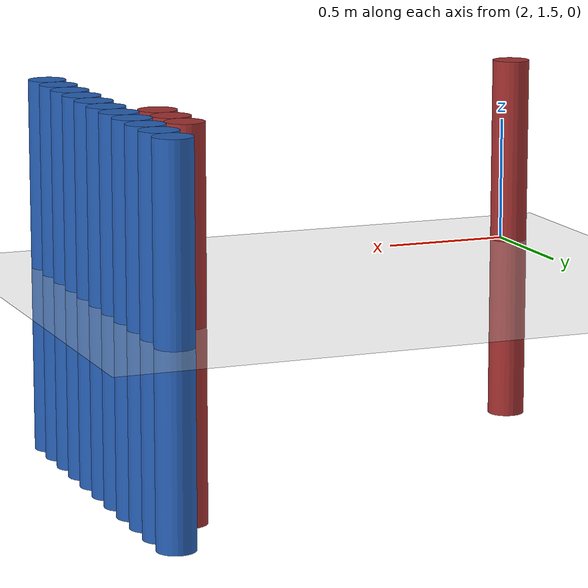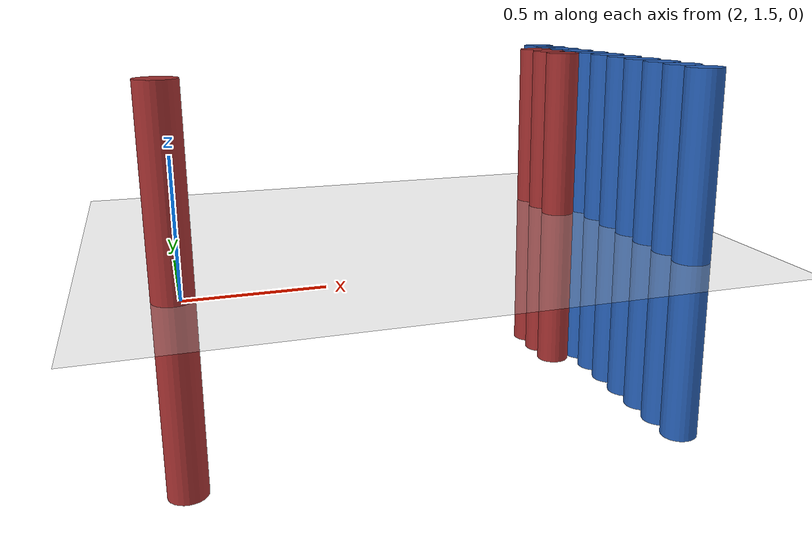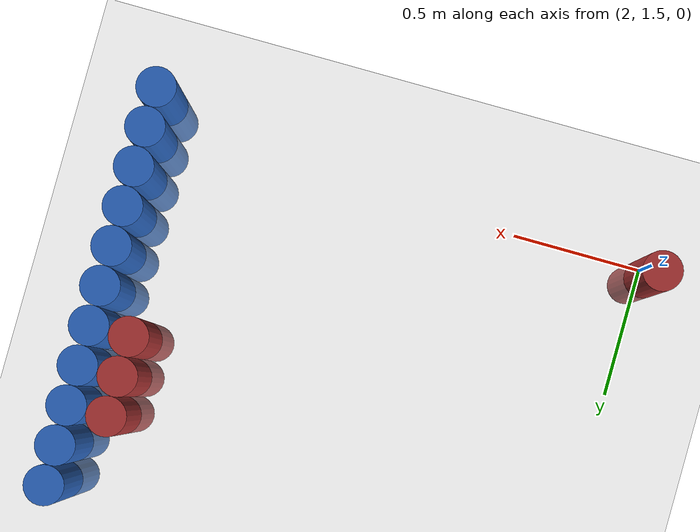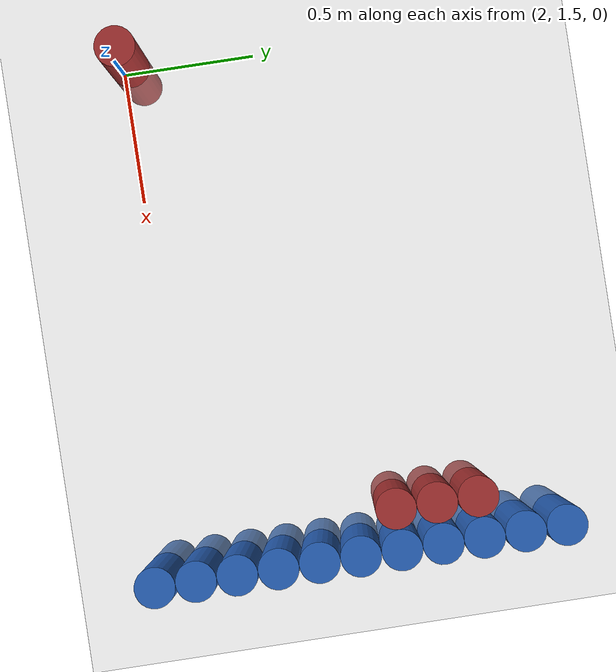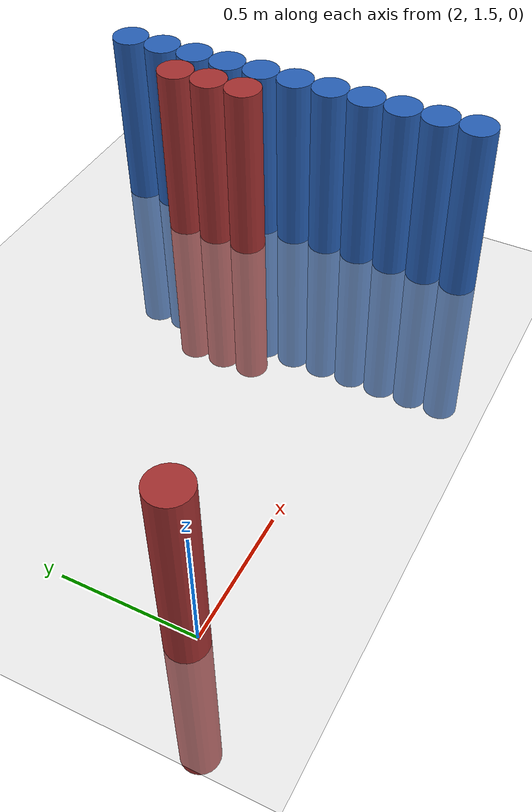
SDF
<sdf version="1.6">
 <world name="default">
  <model name="ground_plane">
   <static>1</static>
   <link name="link">
    <collision name="collision">
     <geometry><plane><normal>0 0 1</normal><size>100 100</size></plane></geometry>
     <surface><friction><ode><mu>100</mu><mu2>50</mu2></ode></friction></surface>
    </collision>
    <visual name="visual">
     <cast_shadows>0</cast_shadows>
     <geometry><plane><normal>0 0 1</normal><size>100 100</size></plane></geometry>
     <material>
      <script><uri>file://media/materials/scripts/gazebo.material</uri><name>Gazebo/Grey</name></script>
     </material>
    </visual>
   </link>
  </model>
  <model name="unit_cylinder_134">
   <static>1</static>
   <pose>3.925000 1.525000 0.000000 0.000000 0.000000 0.000000</pose>
   <link name="link">
    <inertial>
     <mass>1</mass>
     <inertia><ixx>0.145833</ixx><ixy>0</ixy><ixz>0</ixz><iyy>0.145833</iyy><iyz>0</iyz><izz>0.125</izz></inertia>
    </inertial>
    <collision name="collision">
     <geometry><cylinder><radius>0.075000</radius><length>1.5</length></cylinder></geometry>
    </collision>
    <visual name="visual">
     <geometry><cylinder><radius>0.075000</radius><length>1.5</length></cylinder></geometry>
     <material>
      <ambient>0.152000 0.379000 0.720000 1</ambient>
      <diffuse>0.152000 0.379000 0.720000 1</diffuse>
     </material>
     <material>
      <script><name>Gazebo/Grey</name><uri>file://media/materials/scripts/gazebo.material</uri></script>
     </material>
    </visual>
   </link>
  </model>
  <model name="unit_cylinder_136">
   <static>1</static>
   <pose>3.925000 1.675000 0.000000 0.000000 0.000000 0.000000</pose>
   <link name="link">
    <inertial>
     <mass>1</mass>
     <inertia><ixx>0.145833</ixx><ixy>0</ixy><ixz>0</ixz><iyy>0.145833</iyy><iyz>0</iyz><izz>0.125</izz></inertia>
    </inertial>
    <collision name="collision">
     <geometry><cylinder><radius>0.075000</radius><length>1.5</length></cylinder></geometry>
    </collision>
    <visual name="visual">
     <geometry><cylinder><radius>0.075000</radius><length>1.5</length></cylinder></geometry>
     <material>
      <ambient>0.152000 0.379000 0.720000 1</ambient>
      <diffuse>0.152000 0.379000 0.720000 1</diffuse>
     </material>
     <material>
      <script><name>Gazebo/Grey</name><uri>file://media/materials/scripts/gazebo.material</uri></script>
     </material>
    </visual>
   </link>
  </model>
  <model name="unit_cylinder_138">
   <static>1</static>
   <pose>3.925000 1.825000 0.000000 0.000000 0.000000 0.000000</pose>
   <link name="link">
    <inertial>
     <mass>1</mass>
     <inertia><ixx>0.145833</ixx><ixy>0</ixy><ixz>0</ixz><iyy>0.145833</iyy><iyz>0</iyz><izz>0.125</izz></inertia>
    </inertial>
    <collision name="collision">
     <geometry><cylinder><radius>0.075000</radius><length>1.5</length></cylinder></geometry>
    </collision>
    <visual name="visual">
     <geometry><cylinder><radius>0.075000</radius><length>1.5</length></cylinder></geometry>
     <material>
      <ambient>0.152000 0.379000 0.720000 1</ambient>
      <diffuse>0.152000 0.379000 0.720000 1</diffuse>
     </material>
     <material>
      <script><name>Gazebo/Grey</name><uri>file://media/materials/scripts/gazebo.material</uri></script>
     </material>
    </visual>
   </link>
  </model>
  <model name="unit_cylinder_140">
   <static>1</static>
   <pose>3.925000 1.975000 0.000000 0.000000 0.000000 0.000000</pose>
   <link name="link">
    <inertial>
     <mass>1</mass>
     <inertia><ixx>0.145833</ixx><ixy>0</ixy><ixz>0</ixz><iyy>0.145833</iyy><iyz>0</iyz><izz>0.125</izz></inertia>
    </inertial>
    <collision name="collision">
     <geometry><cylinder><radius>0.075000</radius><length>1.5</length></cylinder></geometry>
    </collision>
    <visual name="visual">
     <geometry><cylinder><radius>0.075000</radius><length>1.5</length></cylinder></geometry>
     <material>
      <ambient>0.152000 0.379000 0.720000 1</ambient>
      <diffuse>0.152000 0.379000 0.720000 1</diffuse>
     </material>
     <material>
      <script><name>Gazebo/Grey</name><uri>file://media/materials/scripts/gazebo.material</uri></script>
     </material>
    </visual>
   </link>
  </model>
  <model name="unit_cylinder_142">
   <static>1</static>
   <pose>3.925000 2.125000 0.000000 0.000000 0.000000 0.000000</pose>
   <link name="link">
    <inertial>
     <mass>1</mass>
     <inertia><ixx>0.145833</ixx><ixy>0</ixy><ixz>0</ixz><iyy>0.145833</iyy><iyz>0</iyz><izz>0.125</izz></inertia>
    </inertial>
    <collision name="collision">
     <geometry><cylinder><radius>0.075000</radius><length>1.5</length></cylinder></geometry>
    </collision>
    <visual name="visual">
     <geometry><cylinder><radius>0.075000</radius><length>1.5</length></cylinder></geometry>
     <material>
      <ambient>0.152000 0.379000 0.720000 1</ambient>
      <diffuse>0.152000 0.379000 0.720000 1</diffuse>
     </material>
     <material>
      <script><name>Gazebo/Grey</name><uri>file://media/materials/scripts/gazebo.material</uri></script>
     </material>
    </visual>
   </link>
  </model>
  <model name="unit_cylinder_144">
   <static>1</static>
   <pose>3.925000 2.275000 0.000000 0.000000 0.000000 0.000000</pose>
   <link name="link">
    <inertial>
     <mass>1</mass>
     <inertia><ixx>0.145833</ixx><ixy>0</ixy><ixz>0</ixz><iyy>0.145833</iyy><iyz>0</iyz><izz>0.125</izz></inertia>
    </inertial>
    <collision name="collision">
     <geometry><cylinder><radius>0.075000</radius><length>1.5</length></cylinder></geometry>
    </collision>
    <visual name="visual">
     <geometry><cylinder><radius>0.075000</radius><length>1.5</length></cylinder></geometry>
     <material>
      <ambient>0.152000 0.379000 0.720000 1</ambient>
      <diffuse>0.152000 0.379000 0.720000 1</diffuse>
     </material>
     <material>
      <script><name>Gazebo/Grey</name><uri>file://media/materials/scripts/gazebo.material</uri></script>
     </material>
    </visual>
   </link>
  </model>
  <model name="unit_cylinder_146">
   <static>1</static>
   <pose>3.925000 2.425000 0.000000 0.000000 0.000000 0.000000</pose>
   <link name="link">
    <inertial>
     <mass>1</mass>
     <inertia><ixx>0.145833</ixx><ixy>0</ixy><ixz>0</ixz><iyy>0.145833</iyy><iyz>0</iyz><izz>0.125</izz></inertia>
    </inertial>
    <collision name="collision">
     <geometry><cylinder><radius>0.075000</radius><length>1.5</length></cylinder></geometry>
    </collision>
    <visual name="visual">
     <geometry><cylinder><radius>0.075000</radius><length>1.5</length></cylinder></geometry>
     <material>
      <ambient>0.152000 0.379000 0.720000 1</ambient>
      <diffuse>0.152000 0.379000 0.720000 1</diffuse>
     </material>
     <material>
      <script><name>Gazebo/Grey</name><uri>file://media/materials/scripts/gazebo.material</uri></script>
     </material>
    </visual>
   </link>
  </model>
  <model name="unit_cylinder_148">
   <static>1</static>
   <pose>3.925000 2.575000 0.000000 0.000000 0.000000 0.000000</pose>
   <link name="link">
    <inertial>
     <mass>1</mass>
     <inertia><ixx>0.145833</ixx><ixy>0</ixy><ixz>0</ixz><iyy>0.145833</iyy><iyz>0</iyz><izz>0.125</izz></inertia>
    </inertial>
    <collision name="collision">
     <geometry><cylinder><radius>0.075000</radius><length>1.5</length></cylinder></geometry>
    </collision>
    <visual name="visual">
     <geometry><cylinder><radius>0.075000</radius><length>1.5</length></cylinder></geometry>
     <material>
      <ambient>0.152000 0.379000 0.720000 1</ambient>
      <diffuse>0.152000 0.379000 0.720000 1</diffuse>
     </material>
     <material>
      <script><name>Gazebo/Grey</name><uri>file://media/materials/scripts/gazebo.material</uri></script>
     </material>
    </visual>
   </link>
  </model>
  <model name="unit_cylinder_150">
   <static>1</static>
   <pose>3.925000 2.725000 0.000000 0.000000 0.000000 0.000000</pose>
   <link name="link">
    <inertial>
     <mass>1</mass>
     <inertia><ixx>0.145833</ixx><ixy>0</ixy><ixz>0</ixz><iyy>0.145833</iyy><iyz>0</iyz><izz>0.125</izz></inertia>
    </inertial>
    <collision name="collision">
     <geometry><cylinder><radius>0.075000</radius><length>1.5</length></cylinder></geometry>
    </collision>
    <visual name="visual">
     <geometry><cylinder><radius>0.075000</radius><length>1.5</length></cylinder></geometry>
     <material>
      <ambient>0.152000 0.379000 0.720000 1</ambient>
      <diffuse>0.152000 0.379000 0.720000 1</diffuse>
     </material>
     <material>
      <script><name>Gazebo/Grey</name><uri>file://media/materials/scripts/gazebo.material</uri></script>
     </material>
    </visual>
   </link>
  </model>
  <model name="unit_cylinder_152">
   <static>1</static>
   <pose>3.925000 2.875000 0.000000 0.000000 0.000000 0.000000</pose>
   <link name="link">
    <inertial>
     <mass>1</mass>
     <inertia><ixx>0.145833</ixx><ixy>0</ixy><ixz>0</ixz><iyy>0.145833</iyy><iyz>0</iyz><izz>0.125</izz></inertia>
    </inertial>
    <collision name="collision">
     <geometry><cylinder><radius>0.075000</radius><length>1.5</length></cylinder></geometry>
    </collision>
    <visual name="visual">
     <geometry><cylinder><radius>0.075000</radius><length>1.5</length></cylinder></geometry>
     <material>
      <ambient>0.152000 0.379000 0.720000 1</ambient>
      <diffuse>0.152000 0.379000 0.720000 1</diffuse>
     </material>
     <material>
      <script><name>Gazebo/Grey</name><uri>file://media/materials/scripts/gazebo.material</uri></script>
     </material>
    </visual>
   </link>
  </model>
  <model name="unit_cylinder_281">
   <static>1</static>
   <pose>1.975000 1.525000 0.000000 0.000000 0.000000 0.000000</pose>
   <link name="link">
    <inertial>
     <mass>1</mass>
     <inertia><ixx>0.145833</ixx><ixy>0</ixy><ixz>0</ixz><iyy>0.145833</iyy><iyz>0</iyz><izz>0.125</izz></inertia>
    </inertial>
    <collision name="collision">
     <geometry><cylinder><radius>0.075000</radius><length>1.5</length></cylinder></geometry>
    </collision>
    <visual name="visual">
     <geometry><cylinder><radius>0.075000</radius><length>1.5</length></cylinder></geometry>
     <material>
      <ambient>0.648000 0.192000 0.192000 1</ambient>
      <diffuse>0.648000 0.192000 0.192000 1</diffuse>
     </material>
     <material>
      <script><name>Gazebo/Grey</name><uri>file://media/materials/scripts/gazebo.material</uri></script>
     </material>
    </visual>
   </link>
  </model>
  <model name="unit_cylinder_287">
   <static>1</static>
   <pose>3.775000 2.275000 0.000000 0.000000 0.000000 0.000000</pose>
   <link name="link">
    <inertial>
     <mass>1</mass>
     <inertia><ixx>0.145833</ixx><ixy>0</ixy><ixz>0</ixz><iyy>0.145833</iyy><iyz>0</iyz><izz>0.125</izz></inertia>
    </inertial>
    <collision name="collision">
     <geometry><cylinder><radius>0.075000</radius><length>1.5</length></cylinder></geometry>
    </collision>
    <visual name="visual">
     <geometry><cylinder><radius>0.075000</radius><length>1.5</length></cylinder></geometry>
     <material>
      <ambient>0.648000 0.192000 0.192000 1</ambient>
      <diffuse>0.648000 0.192000 0.192000 1</diffuse>
     </material>
     <material>
      <script><name>Gazebo/Grey</name><uri>file://media/materials/scripts/gazebo.material</uri></script>
     </material>
    </visual>
   </link>
  </model>
  <model name="unit_cylinder_288">
   <static>1</static>
   <pose>3.775000 2.425000 0.000000 0.000000 0.000000 0.000000</pose>
   <link name="link">
    <inertial>
     <mass>1</mass>
     <inertia><ixx>0.145833</ixx><ixy>0</ixy><ixz>0</ixz><iyy>0.145833</iyy><iyz>0</iyz><izz>0.125</izz></inertia>
    </inertial>
    <collision name="collision">
     <geometry><cylinder><radius>0.075000</radius><length>1.5</length></cylinder></geometry>
    </collision>
    <visual name="visual">
     <geometry><cylinder><radius>0.075000</radius><length>1.5</length></cylinder></geometry>
     <material>
      <ambient>0.648000 0.192000 0.192000 1</ambient>
      <diffuse>0.648000 0.192000 0.192000 1</diffuse>
     </material>
     <material>
      <script><name>Gazebo/Grey</name><uri>file://media/materials/scripts/gazebo.material</uri></script>
     </material>
    </visual>
   </link>
  </model>
  <model name="unit_cylinder_289">
   <static>1</static>
   <pose>3.775000 2.575000 0.000000 0.000000 0.000000 0.000000</pose>
   <link name="link">
    <inertial>
     <mass>1</mass>
     <inertia><ixx>0.145833</ixx><ixy>0</ixy><ixz>0</ixz><iyy>0.145833</iyy><iyz>0</iyz><izz>0.125</izz></inertia>
    </inertial>
    <collision name="collision">
     <geometry><cylinder><radius>0.075000</radius><length>1.5</length></cylinder></geometry>
    </collision>
    <visual name="visual">
     <geometry><cylinder><radius>0.075000</radius><length>1.5</length></cylinder></geometry>
     <material>
      <ambient>0.648000 0.192000 0.192000 1</ambient>
      <diffuse>0.648000 0.192000 0.192000 1</diffuse>
     </material>
     <material>
      <script><name>Gazebo/Grey</name><uri>file://media/materials/scripts/gazebo.material</uri></script>
     </material>
    </visual>
   </link>
  </model>
  <model name="unit_cylinder_314">
   <static>1</static>
   <pose>3.925000 1.375000 0.000000 0.000000 0.000000 0.000000</pose>
   <link name="link">
    <inertial>
     <mass>1</mass>
     <inertia><ixx>0.145833</ixx><ixy>0</ixy><ixz>0</ixz><iyy>0.145833</iyy><iyz>0</iyz><izz>0.125</izz></inertia>
    </inertial>
    <collision name="collision">
     <geometry><cylinder><radius>0.075000</radius><length>1.5</length></cylinder></geometry>
    </collision>
    <visual name="visual">
     <geometry><cylinder><radius>0.075000</radius><length>1.5</length></cylinder></geometry>
     <material>
      <ambient>0.152000 0.379000 0.720000 1</ambient>
      <diffuse>0.152000 0.379000 0.720000 1</diffuse>
     </material>
     <material>
      <script><name>Gazebo/Grey</name><uri>file://media/materials/scripts/gazebo.material</uri></script>
     </material>
    </visual>
   </link>
  </model>
  <model name="unit_cylinder_315">
   <static>1</static>
   <pose>3.925000 1.525000 0.000000 0.000000 0.000000 0.000000</pose>
   <link name="link">
    <inertial>
     <mass>1</mass>
     <inertia><ixx>0.145833</ixx><ixy>0</ixy><ixz>0</ixz><iyy>0.145833</iyy><iyz>0</iyz><izz>0.125</izz></inertia>
    </inertial>
    <collision name="collision">
     <geometry><cylinder><radius>0.075000</radius><length>1.5</length></cylinder></geometry>
    </collision>
    <visual name="visual">
     <geometry><cylinder><radius>0.075000</radius><length>1.5</length></cylinder></geometry>
     <material>
      <ambient>0.152000 0.379000 0.720000 1</ambient>
      <diffuse>0.152000 0.379000 0.720000 1</diffuse>
     </material>
     <material>
      <script><name>Gazebo/Grey</name><uri>file://media/materials/scripts/gazebo.material</uri></script>
     </material>
    </visual>
   </link>
  </model>
  <model name="unit_cylinder_316">
   <static>1</static>
   <pose>3.925000 1.675000 0.000000 0.000000 0.000000 0.000000</pose>
   <link name="link">
    <inertial>
     <mass>1</mass>
     <inertia><ixx>0.145833</ixx><ixy>0</ixy><ixz>0</ixz><iyy>0.145833</iyy><iyz>0</iyz><izz>0.125</izz></inertia>
    </inertial>
    <collision name="collision">
     <geometry><cylinder><radius>0.075000</radius><length>1.5</length></cylinder></geometry>
    </collision>
    <visual name="visual">
     <geometry><cylinder><radius>0.075000</radius><length>1.5</length></cylinder></geometry>
     <material>
      <ambient>0.152000 0.379000 0.720000 1</ambient>
      <diffuse>0.152000 0.379000 0.720000 1</diffuse>
     </material>
     <material>
      <script><name>Gazebo/Grey</name><uri>file://media/materials/scripts/gazebo.material</uri></script>
     </material>
    </visual>
   </link>
  </model>
  <model name="unit_cylinder_317">
   <static>1</static>
   <pose>3.925000 1.825000 0.000000 0.000000 0.000000 0.000000</pose>
   <link name="link">
    <inertial>
     <mass>1</mass>
     <inertia><ixx>0.145833</ixx><ixy>0</ixy><ixz>0</ixz><iyy>0.145833</iyy><iyz>0</iyz><izz>0.125</izz></inertia>
    </inertial>
    <collision name="collision">
     <geometry><cylinder><radius>0.075000</radius><length>1.5</length></cylinder></geometry>
    </collision>
    <visual name="visual">
     <geometry><cylinder><radius>0.075000</radius><length>1.5</length></cylinder></geometry>
     <material>
      <ambient>0.152000 0.379000 0.720000 1</ambient>
      <diffuse>0.152000 0.379000 0.720000 1</diffuse>
     </material>
     <material>
      <script><name>Gazebo/Grey</name><uri>file://media/materials/scripts/gazebo.material</uri></script>
     </material>
    </visual>
   </link>
  </model>
  <model name="unit_cylinder_318">
   <static>1</static>
   <pose>3.925000 1.975000 0.000000 0.000000 0.000000 0.000000</pose>
   <link name="link">
    <inertial>
     <mass>1</mass>
     <inertia><ixx>0.145833</ixx><ixy>0</ixy><ixz>0</ixz><iyy>0.145833</iyy><iyz>0</iyz><izz>0.125</izz></inertia>
    </inertial>
    <collision name="collision">
     <geometry><cylinder><radius>0.075000</radius><length>1.5</length></cylinder></geometry>
    </collision>
    <visual name="visual">
     <geometry><cylinder><radius>0.075000</radius><length>1.5</length></cylinder></geometry>
     <material>
      <ambient>0.152000 0.379000 0.720000 1</ambient>
      <diffuse>0.152000 0.379000 0.720000 1</diffuse>
     </material>
     <material>
      <script><name>Gazebo/Grey</name><uri>file://media/materials/scripts/gazebo.material</uri></script>
     </material>
    </visual>
   </link>
  </model>
  <model name="unit_cylinder_319">
   <static>1</static>
   <pose>3.925000 2.125000 0.000000 0.000000 0.000000 0.000000</pose>
   <link name="link">
    <inertial>
     <mass>1</mass>
     <inertia><ixx>0.145833</ixx><ixy>0</ixy><ixz>0</ixz><iyy>0.145833</iyy><iyz>0</iyz><izz>0.125</izz></inertia>
    </inertial>
    <collision name="collision">
     <geometry><cylinder><radius>0.075000</radius><length>1.5</length></cylinder></geometry>
    </collision>
    <visual name="visual">
     <geometry><cylinder><radius>0.075000</radius><length>1.5</length></cylinder></geometry>
     <material>
      <ambient>0.152000 0.379000 0.720000 1</ambient>
      <diffuse>0.152000 0.379000 0.720000 1</diffuse>
     </material>
     <material>
      <script><name>Gazebo/Grey</name><uri>file://media/materials/scripts/gazebo.material</uri></script>
     </material>
    </visual>
   </link>
  </model>
  <model name="unit_cylinder_320">
   <static>1</static>
   <pose>3.925000 2.275000 0.000000 0.000000 0.000000 0.000000</pose>
   <link name="link">
    <inertial>
     <mass>1</mass>
     <inertia><ixx>0.145833</ixx><ixy>0</ixy><ixz>0</ixz><iyy>0.145833</iyy><iyz>0</iyz><izz>0.125</izz></inertia>
    </inertial>
    <collision name="collision">
     <geometry><cylinder><radius>0.075000</radius><length>1.5</length></cylinder></geometry>
    </collision>
    <visual name="visual">
     <geometry><cylinder><radius>0.075000</radius><length>1.5</length></cylinder></geometry>
     <material>
      <ambient>0.152000 0.379000 0.720000 1</ambient>
      <diffuse>0.152000 0.379000 0.720000 1</diffuse>
     </material>
     <material>
      <script><name>Gazebo/Grey</name><uri>file://media/materials/scripts/gazebo.material</uri></script>
     </material>
    </visual>
   </link>
  </model>
  <model name="unit_cylinder_321">
   <static>1</static>
   <pose>3.925000 2.425000 0.000000 0.000000 0.000000 0.000000</pose>
   <link name="link">
    <inertial>
     <mass>1</mass>
     <inertia><ixx>0.145833</ixx><ixy>0</ixy><ixz>0</ixz><iyy>0.145833</iyy><iyz>0</iyz><izz>0.125</izz></inertia>
    </inertial>
    <collision name="collision">
     <geometry><cylinder><radius>0.075000</radius><length>1.5</length></cylinder></geometry>
    </collision>
    <visual name="visual">
     <geometry><cylinder><radius>0.075000</radius><length>1.5</length></cylinder></geometry>
     <material>
      <ambient>0.152000 0.379000 0.720000 1</ambient>
      <diffuse>0.152000 0.379000 0.720000 1</diffuse>
     </material>
     <material>
      <script><name>Gazebo/Grey</name><uri>file://media/materials/scripts/gazebo.material</uri></script>
     </material>
    </visual>
   </link>
  </model>
  <model name="unit_cylinder_322">
   <static>1</static>
   <pose>3.925000 2.575000 0.000000 0.000000 0.000000 0.000000</pose>
   <link name="link">
    <inertial>
     <mass>1</mass>
     <inertia><ixx>0.145833</ixx><ixy>0</ixy><ixz>0</ixz><iyy>0.145833</iyy><iyz>0</iyz><izz>0.125</izz></inertia>
    </inertial>
    <collision name="collision">
     <geometry><cylinder><radius>0.075000</radius><length>1.5</length></cylinder></geometry>
    </collision>
    <visual name="visual">
     <geometry><cylinder><radius>0.075000</radius><length>1.5</length></cylinder></geometry>
     <material>
      <ambient>0.152000 0.379000 0.720000 1</ambient>
      <diffuse>0.152000 0.379000 0.720000 1</diffuse>
     </material>
     <material>
      <script><name>Gazebo/Grey</name><uri>file://media/materials/scripts/gazebo.material</uri></script>
     </material>
    </visual>
   </link>
  </model>
  <model name="unit_cylinder_323">
   <static>1</static>
   <pose>3.925000 2.725000 0.000000 0.000000 0.000000 0.000000</pose>
   <link name="link">
    <inertial>
     <mass>1</mass>
     <inertia><ixx>0.145833</ixx><ixy>0</ixy><ixz>0</ixz><iyy>0.145833</iyy><iyz>0</iyz><izz>0.125</izz></inertia>
    </inertial>
    <collision name="collision">
     <geometry><cylinder><radius>0.075000</radius><length>1.5</length></cylinder></geometry>
    </collision>
    <visual name="visual">
     <geometry><cylinder><radius>0.075000</radius><length>1.5</length></cylinder></geometry>
     <material>
      <ambient>0.152000 0.379000 0.720000 1</ambient>
      <diffuse>0.152000 0.379000 0.720000 1</diffuse>
     </material>
     <material>
      <script><name>Gazebo/Grey</name><uri>file://media/materials/scripts/gazebo.material</uri></script>
     </material>
    </visual>
   </link>
  </model>
  <model name="unit_cylinder_324">
   <static>1</static>
   <pose>3.925000 2.875000 0.000000 0.000000 0.000000 0.000000</pose>
   <link name="link">
    <inertial>
     <mass>1</mass>
     <inertia><ixx>0.145833</ixx><ixy>0</ixy><ixz>0</ixz><iyy>0.145833</iyy><iyz>0</iyz><izz>0.125</izz></inertia>
    </inertial>
    <collision name="collision">
     <geometry><cylinder><radius>0.075000</radius><length>1.5</length></cylinder></geometry>
    </collision>
    <visual name="visual">
     <geometry><cylinder><radius>0.075000</radius><length>1.5</length></cylinder></geometry>
     <material>
      <ambient>0.152000 0.379000 0.720000 1</ambient>
      <diffuse>0.152000 0.379000 0.720000 1</diffuse>
     </material>
     <material>
      <script><name>Gazebo/Grey</name><uri>file://media/materials/scripts/gazebo.material</uri></script>
     </material>
    </visual>
   </link>
  </model>
 </world>
</sdf>
